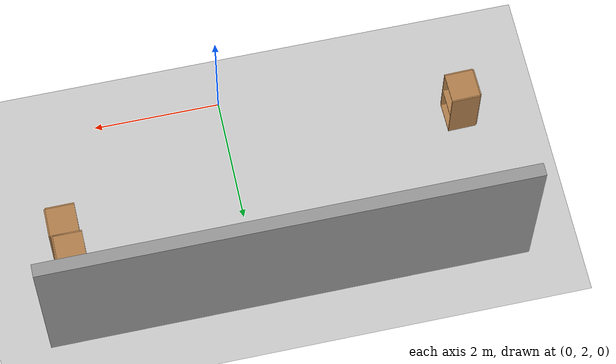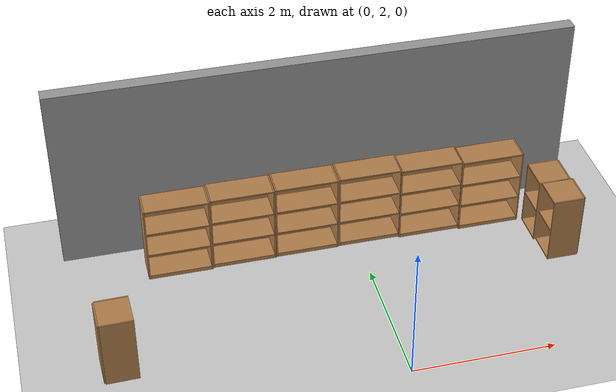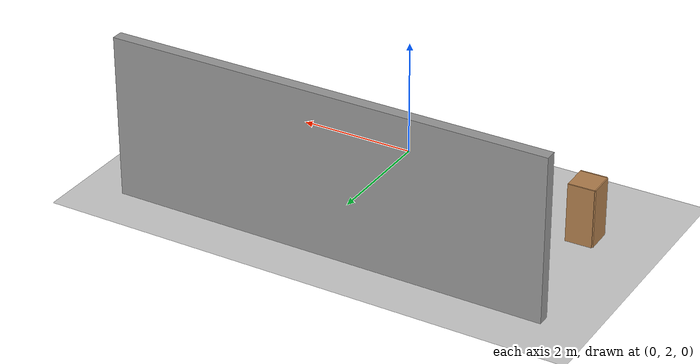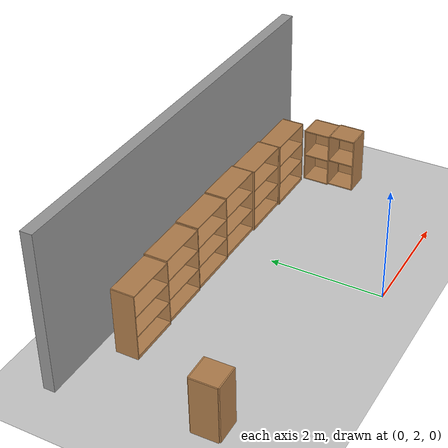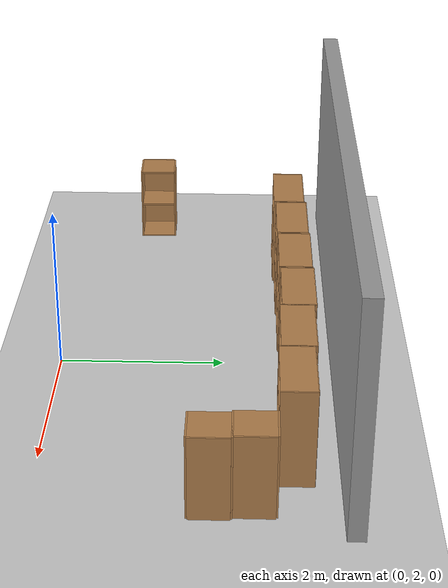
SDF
<sdf version="1.4">
 <world name="default">
  <model name="ground_plane">
   <static>1</static>
   <link name="link">
    <collision name="collision">
     <geometry><plane><normal>0 0 1</normal><size>100 100</size></plane></geometry>
     <surface><friction><ode><mu>100</mu><mu2>50</mu2></ode></friction></surface>
    </collision>
    <visual name="visual">
     <cast_shadows>0</cast_shadows>
     <geometry><plane><normal>0 0 1</normal><size>100 100</size></plane></geometry>
     <material>
      <script><uri>file://media/materials/scripts/gazebo.material</uri><name>Gazebo/Grey</name></script>
     </material>
    </visual>
    <velocity_decay><linear>0</linear><angular>0</angular></velocity_decay>
   </link>
  </model>
  <model name="bookshelf_1">
   <static>1</static>
   <link name="link">
    <inertial><mass>1</mass></inertial>
    <collision name="back">
     <pose>0 0.005 0.6 0 -0 0</pose>
     <geometry><box><size>0.9 0.01 1.2</size></box></geometry>
    </collision>
    <visual name="visual1">
     <pose>0 0.005 0.6 0 -0 0</pose>
     <geometry><box><size>0.9 0.01 1.2</size></box></geometry>
     <material>
      <script><uri>file://media/materials/scripts/gazebo.material</uri><name>Gazebo/Wood</name></script>
     </material>
    </visual>
    <collision name="left_side">
     <pose>0.45 -0.195 0.6 0 -0 0</pose>
     <geometry><box><size>0.02 0.4 1.2</size></box></geometry>
    </collision>
    <visual name="visual2">
     <pose>0.45 -0.195 0.6 0 -0 0</pose>
     <geometry><box><size>0.02 0.4 1.2</size></box></geometry>
     <material>
      <script><uri>file://media/materials/scripts/gazebo.material</uri><name>Gazebo/Wood</name></script>
     </material>
    </visual>
    <collision name="right_side">
     <pose>-0.45 -0.195 0.6 0 -0 0</pose>
     <geometry><box><size>0.02 0.4 1.2</size></box></geometry>
    </collision>
    <visual name="visual3">
     <pose>-0.45 -0.195 0.6 0 -0 0</pose>
     <geometry><box><size>0.02 0.4 1.2</size></box></geometry>
     <material>
      <script><uri>file://media/materials/scripts/gazebo.material</uri><name>Gazebo/Wood</name></script>
     </material>
    </visual>
    <collision name="bottom">
     <pose>0 -0.195 0.03 0 -0 0</pose>
     <geometry><box><size>0.88 0.4 0.06</size></box></geometry>
    </collision>
    <visual name="visual4">
     <pose>0 -0.195 0.03 0 -0 0</pose>
     <geometry><box><size>0.88 0.4 0.06</size></box></geometry>
     <material>
      <script><uri>file://media/materials/scripts/gazebo.material</uri><name>Gazebo/Wood</name></script>
     </material>
    </visual>
    <collision name="top">
     <pose>0 -0.195 1.19 0 -0 0</pose>
     <geometry><box><size>0.88 0.4 0.02</size></box></geometry>
    </collision>
    <visual name="visual5">
     <pose>0 -0.195 1.19 0 -0 0</pose>
     <geometry><box><size>0.88 0.4 0.02</size></box></geometry>
     <material>
      <script><uri>file://media/materials/scripts/gazebo.material</uri><name>Gazebo/Wood</name></script>
     </material>
    </visual>
    <collision name="low_shelf">
     <pose>0 -0.195 0.43 0 -0 0</pose>
     <geometry><box><size>0.88 0.4 0.02</size></box></geometry>
    </collision>
    <visual name="visual6">
     <pose>0 -0.195 0.43 0 -0 0</pose>
     <geometry><box><size>0.88 0.4 0.02</size></box></geometry>
     <material>
      <script><uri>file://media/materials/scripts/gazebo.material</uri><name>Gazebo/Wood</name></script>
     </material>
    </visual>
    <collision name="high_shelf">
     <pose>0 -0.195 0.8 0 -0 0</pose>
     <geometry><box><size>0.88 0.4 0.02</size></box></geometry>
    </collision>
    <visual name="visual7">
     <pose>0 -0.195 0.8 0 -0 0</pose>
     <geometry><box><size>0.88 0.4 0.02</size></box></geometry>
     <material>
      <script><uri>file://media/materials/scripts/gazebo.material</uri><name>Gazebo/Wood</name></script>
     </material>
    </visual>
    <velocity_decay><linear>0</linear><angular>0</angular></velocity_decay>
   </link>
   <pose>-2.60211 5.02258 0 0 -0 0</pose>
  </model>
  <model name="bookshelf_2">
   <static>1</static>
   <link name="link">
    <inertial><mass>1</mass></inertial>
    <collision name="back">
     <pose>0 0.005 0.6 0 -0 0</pose>
     <geometry><box><size>0.9 0.01 1.2</size></box></geometry>
    </collision>
    <visual name="visual1">
     <pose>0 0.005 0.6 0 -0 0</pose>
     <geometry><box><size>0.9 0.01 1.2</size></box></geometry>
     <material>
      <script><uri>file://media/materials/scripts/gazebo.material</uri><name>Gazebo/Wood</name></script>
     </material>
    </visual>
    <collision name="left_side">
     <pose>0.45 -0.195 0.6 0 -0 0</pose>
     <geometry><box><size>0.02 0.4 1.2</size></box></geometry>
    </collision>
    <visual name="visual2">
     <pose>0.45 -0.195 0.6 0 -0 0</pose>
     <geometry><box><size>0.02 0.4 1.2</size></box></geometry>
     <material>
      <script><uri>file://media/materials/scripts/gazebo.material</uri><name>Gazebo/Wood</name></script>
     </material>
    </visual>
    <collision name="right_side">
     <pose>-0.45 -0.195 0.6 0 -0 0</pose>
     <geometry><box><size>0.02 0.4 1.2</size></box></geometry>
    </collision>
    <visual name="visual3">
     <pose>-0.45 -0.195 0.6 0 -0 0</pose>
     <geometry><box><size>0.02 0.4 1.2</size></box></geometry>
     <material>
      <script><uri>file://media/materials/scripts/gazebo.material</uri><name>Gazebo/Wood</name></script>
     </material>
    </visual>
    <collision name="bottom">
     <pose>0 -0.195 0.03 0 -0 0</pose>
     <geometry><box><size>0.88 0.4 0.06</size></box></geometry>
    </collision>
    <visual name="visual4">
     <pose>0 -0.195 0.03 0 -0 0</pose>
     <geometry><box><size>0.88 0.4 0.06</size></box></geometry>
     <material>
      <script><uri>file://media/materials/scripts/gazebo.material</uri><name>Gazebo/Wood</name></script>
     </material>
    </visual>
    <collision name="top">
     <pose>0 -0.195 1.19 0 -0 0</pose>
     <geometry><box><size>0.88 0.4 0.02</size></box></geometry>
    </collision>
    <visual name="visual5">
     <pose>0 -0.195 1.19 0 -0 0</pose>
     <geometry><box><size>0.88 0.4 0.02</size></box></geometry>
     <material>
      <script><uri>file://media/materials/scripts/gazebo.material</uri><name>Gazebo/Wood</name></script>
     </material>
    </visual>
    <collision name="low_shelf">
     <pose>0 -0.195 0.43 0 -0 0</pose>
     <geometry><box><size>0.88 0.4 0.02</size></box></geometry>
    </collision>
    <visual name="visual6">
     <pose>0 -0.195 0.43 0 -0 0</pose>
     <geometry><box><size>0.88 0.4 0.02</size></box></geometry>
     <material>
      <script><uri>file://media/materials/scripts/gazebo.material</uri><name>Gazebo/Wood</name></script>
     </material>
    </visual>
    <collision name="high_shelf">
     <pose>0 -0.195 0.8 0 -0 0</pose>
     <geometry><box><size>0.88 0.4 0.02</size></box></geometry>
    </collision>
    <visual name="visual7">
     <pose>0 -0.195 0.8 0 -0 0</pose>
     <geometry><box><size>0.88 0.4 0.02</size></box></geometry>
     <material>
      <script><uri>file://media/materials/scripts/gazebo.material</uri><name>Gazebo/Wood</name></script>
     </material>
    </visual>
    <velocity_decay><linear>0</linear><angular>0</angular></velocity_decay>
   </link>
   <pose>-1.67887 5.04795 0 0 -0 0</pose>
  </model>
  <model name="bookshelf_3">
   <static>1</static>
   <link name="link">
    <inertial><mass>1</mass></inertial>
    <collision name="back">
     <pose>0 0.005 0.6 0 -0 0</pose>
     <geometry><box><size>0.9 0.01 1.2</size></box></geometry>
    </collision>
    <visual name="visual1">
     <pose>0 0.005 0.6 0 -0 0</pose>
     <geometry><box><size>0.9 0.01 1.2</size></box></geometry>
     <material>
      <script><uri>file://media/materials/scripts/gazebo.material</uri><name>Gazebo/Wood</name></script>
     </material>
    </visual>
    <collision name="left_side">
     <pose>0.45 -0.195 0.6 0 -0 0</pose>
     <geometry><box><size>0.02 0.4 1.2</size></box></geometry>
    </collision>
    <visual name="visual2">
     <pose>0.45 -0.195 0.6 0 -0 0</pose>
     <geometry><box><size>0.02 0.4 1.2</size></box></geometry>
     <material>
      <script><uri>file://media/materials/scripts/gazebo.material</uri><name>Gazebo/Wood</name></script>
     </material>
    </visual>
    <collision name="right_side">
     <pose>-0.45 -0.195 0.6 0 -0 0</pose>
     <geometry><box><size>0.02 0.4 1.2</size></box></geometry>
    </collision>
    <visual name="visual3">
     <pose>-0.45 -0.195 0.6 0 -0 0</pose>
     <geometry><box><size>0.02 0.4 1.2</size></box></geometry>
     <material>
      <script><uri>file://media/materials/scripts/gazebo.material</uri><name>Gazebo/Wood</name></script>
     </material>
    </visual>
    <collision name="bottom">
     <pose>0 -0.195 0.03 0 -0 0</pose>
     <geometry><box><size>0.88 0.4 0.06</size></box></geometry>
    </collision>
    <visual name="visual4">
     <pose>0 -0.195 0.03 0 -0 0</pose>
     <geometry><box><size>0.88 0.4 0.06</size></box></geometry>
     <material>
      <script><uri>file://media/materials/scripts/gazebo.material</uri><name>Gazebo/Wood</name></script>
     </material>
    </visual>
    <collision name="top">
     <pose>0 -0.195 1.19 0 -0 0</pose>
     <geometry><box><size>0.88 0.4 0.02</size></box></geometry>
    </collision>
    <visual name="visual5">
     <pose>0 -0.195 1.19 0 -0 0</pose>
     <geometry><box><size>0.88 0.4 0.02</size></box></geometry>
     <material>
      <script><uri>file://media/materials/scripts/gazebo.material</uri><name>Gazebo/Wood</name></script>
     </material>
    </visual>
    <collision name="low_shelf">
     <pose>0 -0.195 0.43 0 -0 0</pose>
     <geometry><box><size>0.88 0.4 0.02</size></box></geometry>
    </collision>
    <visual name="visual6">
     <pose>0 -0.195 0.43 0 -0 0</pose>
     <geometry><box><size>0.88 0.4 0.02</size></box></geometry>
     <material>
      <script><uri>file://media/materials/scripts/gazebo.material</uri><name>Gazebo/Wood</name></script>
     </material>
    </visual>
    <collision name="high_shelf">
     <pose>0 -0.195 0.8 0 -0 0</pose>
     <geometry><box><size>0.88 0.4 0.02</size></box></geometry>
    </collision>
    <visual name="visual7">
     <pose>0 -0.195 0.8 0 -0 0</pose>
     <geometry><box><size>0.88 0.4 0.02</size></box></geometry>
     <material>
      <script><uri>file://media/materials/scripts/gazebo.material</uri><name>Gazebo/Wood</name></script>
     </material>
    </visual>
    <velocity_decay><linear>0</linear><angular>0</angular></velocity_decay>
   </link>
   <pose>-0.750845 5.06248 0 0 -0 0</pose>
  </model>
  <model name="bookshelf_4">
   <static>1</static>
   <link name="link">
    <inertial><mass>1</mass></inertial>
    <collision name="back">
     <pose>0 0.005 0.6 0 -0 0</pose>
     <geometry><box><size>0.9 0.01 1.2</size></box></geometry>
    </collision>
    <visual name="visual1">
     <pose>0 0.005 0.6 0 -0 0</pose>
     <geometry><box><size>0.9 0.01 1.2</size></box></geometry>
     <material>
      <script><uri>file://media/materials/scripts/gazebo.material</uri><name>Gazebo/Wood</name></script>
     </material>
    </visual>
    <collision name="left_side">
     <pose>0.45 -0.195 0.6 0 -0 0</pose>
     <geometry><box><size>0.02 0.4 1.2</size></box></geometry>
    </collision>
    <visual name="visual2">
     <pose>0.45 -0.195 0.6 0 -0 0</pose>
     <geometry><box><size>0.02 0.4 1.2</size></box></geometry>
     <material>
      <script><uri>file://media/materials/scripts/gazebo.material</uri><name>Gazebo/Wood</name></script>
     </material>
    </visual>
    <collision name="right_side">
     <pose>-0.45 -0.195 0.6 0 -0 0</pose>
     <geometry><box><size>0.02 0.4 1.2</size></box></geometry>
    </collision>
    <visual name="visual3">
     <pose>-0.45 -0.195 0.6 0 -0 0</pose>
     <geometry><box><size>0.02 0.4 1.2</size></box></geometry>
     <material>
      <script><uri>file://media/materials/scripts/gazebo.material</uri><name>Gazebo/Wood</name></script>
     </material>
    </visual>
    <collision name="bottom">
     <pose>0 -0.195 0.03 0 -0 0</pose>
     <geometry><box><size>0.88 0.4 0.06</size></box></geometry>
    </collision>
    <visual name="visual4">
     <pose>0 -0.195 0.03 0 -0 0</pose>
     <geometry><box><size>0.88 0.4 0.06</size></box></geometry>
     <material>
      <script><uri>file://media/materials/scripts/gazebo.material</uri><name>Gazebo/Wood</name></script>
     </material>
    </visual>
    <collision name="top">
     <pose>0 -0.195 1.19 0 -0 0</pose>
     <geometry><box><size>0.88 0.4 0.02</size></box></geometry>
    </collision>
    <visual name="visual5">
     <pose>0 -0.195 1.19 0 -0 0</pose>
     <geometry><box><size>0.88 0.4 0.02</size></box></geometry>
     <material>
      <script><uri>file://media/materials/scripts/gazebo.material</uri><name>Gazebo/Wood</name></script>
     </material>
    </visual>
    <collision name="low_shelf">
     <pose>0 -0.195 0.43 0 -0 0</pose>
     <geometry><box><size>0.88 0.4 0.02</size></box></geometry>
    </collision>
    <visual name="visual6">
     <pose>0 -0.195 0.43 0 -0 0</pose>
     <geometry><box><size>0.88 0.4 0.02</size></box></geometry>
     <material>
      <script><uri>file://media/materials/scripts/gazebo.material</uri><name>Gazebo/Wood</name></script>
     </material>
    </visual>
    <collision name="high_shelf">
     <pose>0 -0.195 0.8 0 -0 0</pose>
     <geometry><box><size>0.88 0.4 0.02</size></box></geometry>
    </collision>
    <visual name="visual7">
     <pose>0 -0.195 0.8 0 -0 0</pose>
     <geometry><box><size>0.88 0.4 0.02</size></box></geometry>
     <material>
      <script><uri>file://media/materials/scripts/gazebo.material</uri><name>Gazebo/Wood</name></script>
     </material>
    </visual>
    <velocity_decay><linear>0</linear><angular>0</angular></velocity_decay>
   </link>
   <pose>0.174137 5.07778 0 0 -0 0</pose>
  </model>
  <model name="bookshelf_5">
   <static>1</static>
   <link name="link">
    <inertial><mass>1</mass></inertial>
    <collision name="back">
     <pose>0 0.005 0.6 0 -0 0</pose>
     <geometry><box><size>0.9 0.01 1.2</size></box></geometry>
    </collision>
    <visual name="visual1">
     <pose>0 0.005 0.6 0 -0 0</pose>
     <geometry><box><size>0.9 0.01 1.2</size></box></geometry>
     <material>
      <script><uri>file://media/materials/scripts/gazebo.material</uri><name>Gazebo/Wood</name></script>
     </material>
    </visual>
    <collision name="left_side">
     <pose>0.45 -0.195 0.6 0 -0 0</pose>
     <geometry><box><size>0.02 0.4 1.2</size></box></geometry>
    </collision>
    <visual name="visual2">
     <pose>0.45 -0.195 0.6 0 -0 0</pose>
     <geometry><box><size>0.02 0.4 1.2</size></box></geometry>
     <material>
      <script><uri>file://media/materials/scripts/gazebo.material</uri><name>Gazebo/Wood</name></script>
     </material>
    </visual>
    <collision name="right_side">
     <pose>-0.45 -0.195 0.6 0 -0 0</pose>
     <geometry><box><size>0.02 0.4 1.2</size></box></geometry>
    </collision>
    <visual name="visual3">
     <pose>-0.45 -0.195 0.6 0 -0 0</pose>
     <geometry><box><size>0.02 0.4 1.2</size></box></geometry>
     <material>
      <script><uri>file://media/materials/scripts/gazebo.material</uri><name>Gazebo/Wood</name></script>
     </material>
    </visual>
    <collision name="bottom">
     <pose>0 -0.195 0.03 0 -0 0</pose>
     <geometry><box><size>0.88 0.4 0.06</size></box></geometry>
    </collision>
    <visual name="visual4">
     <pose>0 -0.195 0.03 0 -0 0</pose>
     <geometry><box><size>0.88 0.4 0.06</size></box></geometry>
     <material>
      <script><uri>file://media/materials/scripts/gazebo.material</uri><name>Gazebo/Wood</name></script>
     </material>
    </visual>
    <collision name="top">
     <pose>0 -0.195 1.19 0 -0 0</pose>
     <geometry><box><size>0.88 0.4 0.02</size></box></geometry>
    </collision>
    <visual name="visual5">
     <pose>0 -0.195 1.19 0 -0 0</pose>
     <geometry><box><size>0.88 0.4 0.02</size></box></geometry>
     <material>
      <script><uri>file://media/materials/scripts/gazebo.material</uri><name>Gazebo/Wood</name></script>
     </material>
    </visual>
    <collision name="low_shelf">
     <pose>0 -0.195 0.43 0 -0 0</pose>
     <geometry><box><size>0.88 0.4 0.02</size></box></geometry>
    </collision>
    <visual name="visual6">
     <pose>0 -0.195 0.43 0 -0 0</pose>
     <geometry><box><size>0.88 0.4 0.02</size></box></geometry>
     <material>
      <script><uri>file://media/materials/scripts/gazebo.material</uri><name>Gazebo/Wood</name></script>
     </material>
    </visual>
    <collision name="high_shelf">
     <pose>0 -0.195 0.8 0 -0 0</pose>
     <geometry><box><size>0.88 0.4 0.02</size></box></geometry>
    </collision>
    <visual name="visual7">
     <pose>0 -0.195 0.8 0 -0 0</pose>
     <geometry><box><size>0.88 0.4 0.02</size></box></geometry>
     <material>
      <script><uri>file://media/materials/scripts/gazebo.material</uri><name>Gazebo/Wood</name></script>
     </material>
    </visual>
    <velocity_decay><linear>0</linear><angular>0</angular></velocity_decay>
   </link>
   <pose>1.07614 5.05183 0 0 -0 0</pose>
  </model>
  <model name="bookshelf_6">
   <static>1</static>
   <link name="link">
    <inertial><mass>1</mass></inertial>
    <collision name="back">
     <pose>0 0.005 0.6 0 -0 0</pose>
     <geometry><box><size>0.9 0.01 1.2</size></box></geometry>
    </collision>
    <visual name="visual1">
     <pose>0 0.005 0.6 0 -0 0</pose>
     <geometry><box><size>0.9 0.01 1.2</size></box></geometry>
     <material>
      <script><uri>file://media/materials/scripts/gazebo.material</uri><name>Gazebo/Wood</name></script>
     </material>
    </visual>
    <collision name="left_side">
     <pose>0.45 -0.195 0.6 0 -0 0</pose>
     <geometry><box><size>0.02 0.4 1.2</size></box></geometry>
    </collision>
    <visual name="visual2">
     <pose>0.45 -0.195 0.6 0 -0 0</pose>
     <geometry><box><size>0.02 0.4 1.2</size></box></geometry>
     <material>
      <script><uri>file://media/materials/scripts/gazebo.material</uri><name>Gazebo/Wood</name></script>
     </material>
    </visual>
    <collision name="right_side">
     <pose>-0.45 -0.195 0.6 0 -0 0</pose>
     <geometry><box><size>0.02 0.4 1.2</size></box></geometry>
    </collision>
    <visual name="visual3">
     <pose>-0.45 -0.195 0.6 0 -0 0</pose>
     <geometry><box><size>0.02 0.4 1.2</size></box></geometry>
     <material>
      <script><uri>file://media/materials/scripts/gazebo.material</uri><name>Gazebo/Wood</name></script>
     </material>
    </visual>
    <collision name="bottom">
     <pose>0 -0.195 0.03 0 -0 0</pose>
     <geometry><box><size>0.88 0.4 0.06</size></box></geometry>
    </collision>
    <visual name="visual4">
     <pose>0 -0.195 0.03 0 -0 0</pose>
     <geometry><box><size>0.88 0.4 0.06</size></box></geometry>
     <material>
      <script><uri>file://media/materials/scripts/gazebo.material</uri><name>Gazebo/Wood</name></script>
     </material>
    </visual>
    <collision name="top">
     <pose>0 -0.195 1.19 0 -0 0</pose>
     <geometry><box><size>0.88 0.4 0.02</size></box></geometry>
    </collision>
    <visual name="visual5">
     <pose>0 -0.195 1.19 0 -0 0</pose>
     <geometry><box><size>0.88 0.4 0.02</size></box></geometry>
     <material>
      <script><uri>file://media/materials/scripts/gazebo.material</uri><name>Gazebo/Wood</name></script>
     </material>
    </visual>
    <collision name="low_shelf">
     <pose>0 -0.195 0.43 0 -0 0</pose>
     <geometry><box><size>0.88 0.4 0.02</size></box></geometry>
    </collision>
    <visual name="visual6">
     <pose>0 -0.195 0.43 0 -0 0</pose>
     <geometry><box><size>0.88 0.4 0.02</size></box></geometry>
     <material>
      <script><uri>file://media/materials/scripts/gazebo.material</uri><name>Gazebo/Wood</name></script>
     </material>
    </visual>
    <collision name="high_shelf">
     <pose>0 -0.195 0.8 0 -0 0</pose>
     <geometry><box><size>0.88 0.4 0.02</size></box></geometry>
    </collision>
    <visual name="visual7">
     <pose>0 -0.195 0.8 0 -0 0</pose>
     <geometry><box><size>0.88 0.4 0.02</size></box></geometry>
     <material>
      <script><uri>file://media/materials/scripts/gazebo.material</uri><name>Gazebo/Wood</name></script>
     </material>
    </visual>
    <velocity_decay><linear>0</linear><angular>0</angular></velocity_decay>
   </link>
   <pose>1.97925 5.02595 0 0 -0 0</pose>
  </model>
  <model name="cabinet">
   <static>1</static>
   <link name="cabinet_bottom_plate">
    <inertial>
     <pose>0 0 -1 0 -0 0</pose>
     <inertia><ixx>2.05</ixx><ixy>0</ixy><ixz>0</ixz><iyy>2.05</iyy><iyz>0</iyz><izz>2.05</izz></inertia>
     <mass>25</mass>
    </inertial>
    <collision name="cabinet_bottom_plate_geom">
     <pose>0 0 0.01 0 -0 0</pose>
     <geometry><box><size>0.45 0.45 0.02</size></box></geometry>
    </collision>
    <visual name="cabinet_bottom_plate_geom_visual">
     <pose>0 0 0.01 0 -0 0</pose>
     <geometry><box><size>0.45 0.45 0.02</size></box></geometry>
     <material>
      <script><uri>file://media/materials/scripts/gazebo.material</uri><name>Gazebo/Wood</name></script>
     </material>
    </visual>
    <collision name="cabinet_bottom_plate_geom_cabinet_back_plate">
     <pose>0.235 0 0.51 0 -0 0</pose>
     <geometry><box><size>0.02 0.45 1.02</size></box></geometry>
    </collision>
    <visual name="cabinet_bottom_plate_geom_cabinet_back_plate_visual">
     <pose>0.235 0 0.51 0 -0 0</pose>
     <geometry><box><size>0.02 0.45 1.02</size></box></geometry>
     <material>
      <script><uri>file://media/materials/scripts/gazebo.material</uri><name>Gazebo/Wood</name></script>
     </material>
    </visual>
    <collision name="cabinet_bottom_plate_geom_cabinet_left_plate">
     <pose>0 0.235 0.51 0 -0 0</pose>
     <geometry><box><size>0.45 0.02 1.02</size></box></geometry>
    </collision>
    <visual name="cabinet_bottom_plate_geom_cabinet_left_plate_visual">
     <pose>0 0.235 0.51 0 -0 0</pose>
     <geometry><box><size>0.45 0.02 1.02</size></box></geometry>
     <material>
      <script><uri>file://media/materials/scripts/gazebo.material</uri><name>Gazebo/Wood</name></script>
     </material>
    </visual>
    <collision name="cabinet_bottom_plate_geom_cabinet_middle_plate">
     <pose>0 0 0.51 0 -0 0</pose>
     <geometry><box><size>0.45 0.45 0.02</size></box></geometry>
    </collision>
    <visual name="cabinet_bottom_plate_geom_cabinet_middle_plate_visual">
     <pose>0 0 0.51 0 -0 0</pose>
     <geometry><box><size>0.45 0.45 0.02</size></box></geometry>
     <material>
      <script><uri>file://media/materials/scripts/gazebo.material</uri><name>Gazebo/Wood</name></script>
     </material>
    </visual>
    <collision name="cabinet_bottom_plate_geom_cabinet_right_plate">
     <pose>0 -0.235 0.51 0 -0 0</pose>
     <geometry><box><size>0.45 0.02 1.02</size></box></geometry>
    </collision>
    <visual name="cabinet_bottom_plate_geom_cabinet_right_plate_visual">
     <pose>0 -0.235 0.51 0 -0 0</pose>
     <geometry><box><size>0.45 0.02 1.02</size></box></geometry>
     <material>
      <script><uri>file://media/materials/scripts/gazebo.material</uri><name>Gazebo/Wood</name></script>
     </material>
    </visual>
    <collision name="cabinet_bottom_plate_geom_cabinet_top_plate">
     <pose>0 0 1.01 0 -0 0</pose>
     <geometry><box><size>0.45 0.45 0.02</size></box></geometry>
    </collision>
    <visual name="cabinet_bottom_plate_geom_cabinet_top_plate_visual">
     <pose>0 0 1.01 0 -0 0</pose>
     <geometry><box><size>0.45 0.45 0.02</size></box></geometry>
     <material>
      <script><uri>file://media/materials/scripts/gazebo.material</uri><name>Gazebo/Wood</name></script>
     </material>
    </visual>
    <velocity_decay><linear>0</linear><angular>0</angular></velocity_decay>
   </link>
   <pose>-3.69276 2.98309 0 0 0 -3.12119</pose>
  </model>
  <model name="cabinet_1">
   <static>1</static>
   <link name="cabinet_bottom_plate">
    <inertial>
     <pose>0 0 -1 0 -0 0</pose>
     <inertia><ixx>2.05</ixx><ixy>0</ixy><ixz>0</ixz><iyy>2.05</iyy><iyz>0</iyz><izz>2.05</izz></inertia>
     <mass>25</mass>
    </inertial>
    <collision name="cabinet_bottom_plate_geom">
     <pose>0 0 0.01 0 -0 0</pose>
     <geometry><box><size>0.45 0.45 0.02</size></box></geometry>
    </collision>
    <visual name="cabinet_bottom_plate_geom_visual">
     <pose>0 0 0.01 0 -0 0</pose>
     <geometry><box><size>0.45 0.45 0.02</size></box></geometry>
     <material>
      <script><uri>file://media/materials/scripts/gazebo.material</uri><name>Gazebo/Wood</name></script>
     </material>
    </visual>
    <collision name="cabinet_bottom_plate_geom_cabinet_back_plate">
     <pose>0.235 0 0.51 0 -0 0</pose>
     <geometry><box><size>0.02 0.45 1.02</size></box></geometry>
    </collision>
    <visual name="cabinet_bottom_plate_geom_cabinet_back_plate_visual">
     <pose>0.235 0 0.51 0 -0 0</pose>
     <geometry><box><size>0.02 0.45 1.02</size></box></geometry>
     <material>
      <script><uri>file://media/materials/scripts/gazebo.material</uri><name>Gazebo/Wood</name></script>
     </material>
    </visual>
    <collision name="cabinet_bottom_plate_geom_cabinet_left_plate">
     <pose>0 0.235 0.51 0 -0 0</pose>
     <geometry><box><size>0.45 0.02 1.02</size></box></geometry>
    </collision>
    <visual name="cabinet_bottom_plate_geom_cabinet_left_plate_visual">
     <pose>0 0.235 0.51 0 -0 0</pose>
     <geometry><box><size>0.45 0.02 1.02</size></box></geometry>
     <material>
      <script><uri>file://media/materials/scripts/gazebo.material</uri><name>Gazebo/Wood</name></script>
     </material>
    </visual>
    <collision name="cabinet_bottom_plate_geom_cabinet_middle_plate">
     <pose>0 0 0.51 0 -0 0</pose>
     <geometry><box><size>0.45 0.45 0.02</size></box></geometry>
    </collision>
    <visual name="cabinet_bottom_plate_geom_cabinet_middle_plate_visual">
     <pose>0 0 0.51 0 -0 0</pose>
     <geometry><box><size>0.45 0.45 0.02</size></box></geometry>
     <material>
      <script><uri>file://media/materials/scripts/gazebo.material</uri><name>Gazebo/Wood</name></script>
     </material>
    </visual>
    <collision name="cabinet_bottom_plate_geom_cabinet_right_plate">
     <pose>0 -0.235 0.51 0 -0 0</pose>
     <geometry><box><size>0.45 0.02 1.02</size></box></geometry>
    </collision>
    <visual name="cabinet_bottom_plate_geom_cabinet_right_plate_visual">
     <pose>0 -0.235 0.51 0 -0 0</pose>
     <geometry><box><size>0.45 0.02 1.02</size></box></geometry>
     <material>
      <script><uri>file://media/materials/scripts/gazebo.material</uri><name>Gazebo/Wood</name></script>
     </material>
    </visual>
    <collision name="cabinet_bottom_plate_geom_cabinet_top_plate">
     <pose>0 0 1.01 0 -0 0</pose>
     <geometry><box><size>0.45 0.45 0.02</size></box></geometry>
    </collision>
    <visual name="cabinet_bottom_plate_geom_cabinet_top_plate_visual">
     <pose>0 0 1.01 0 -0 0</pose>
     <geometry><box><size>0.45 0.45 0.02</size></box></geometry>
     <material>
      <script><uri>file://media/materials/scripts/gazebo.material</uri><name>Gazebo/Wood</name></script>
     </material>
    </visual>
    <velocity_decay><linear>0</linear><angular>0</angular></velocity_decay>
   </link>
   <pose>2.73692 4.38456 0 0 -0 0</pose>
  </model>
  <model name="cabinet_2">
   <static>1</static>
   <link name="cabinet_bottom_plate">
    <inertial>
     <pose>0 0 -1 0 -0 0</pose>
     <inertia><ixx>2.05</ixx><ixy>0</ixy><ixz>0</ixz><iyy>2.05</iyy><iyz>0</iyz><izz>2.05</izz></inertia>
     <mass>25</mass>
    </inertial>
    <collision name="cabinet_bottom_plate_geom">
     <pose>0 0 0.01 0 -0 0</pose>
     <geometry><box><size>0.45 0.45 0.02</size></box></geometry>
    </collision>
    <visual name="cabinet_bottom_plate_geom_visual">
     <pose>0 0 0.01 0 -0 0</pose>
     <geometry><box><size>0.45 0.45 0.02</size></box></geometry>
     <material>
      <script><uri>file://media/materials/scripts/gazebo.material</uri><name>Gazebo/Wood</name></script>
     </material>
    </visual>
    <collision name="cabinet_bottom_plate_geom_cabinet_back_plate">
     <pose>0.235 0 0.51 0 -0 0</pose>
     <geometry><box><size>0.02 0.45 1.02</size></box></geometry>
    </collision>
    <visual name="cabinet_bottom_plate_geom_cabinet_back_plate_visual">
     <pose>0.235 0 0.51 0 -0 0</pose>
     <geometry><box><size>0.02 0.45 1.02</size></box></geometry>
     <material>
      <script><uri>file://media/materials/scripts/gazebo.material</uri><name>Gazebo/Wood</name></script>
     </material>
    </visual>
    <collision name="cabinet_bottom_plate_geom_cabinet_left_plate">
     <pose>0 0.235 0.51 0 -0 0</pose>
     <geometry><box><size>0.45 0.02 1.02</size></box></geometry>
    </collision>
    <visual name="cabinet_bottom_plate_geom_cabinet_left_plate_visual">
     <pose>0 0.235 0.51 0 -0 0</pose>
     <geometry><box><size>0.45 0.02 1.02</size></box></geometry>
     <material>
      <script><uri>file://media/materials/scripts/gazebo.material</uri><name>Gazebo/Wood</name></script>
     </material>
    </visual>
    <collision name="cabinet_bottom_plate_geom_cabinet_middle_plate">
     <pose>0 0 0.51 0 -0 0</pose>
     <geometry><box><size>0.45 0.45 0.02</size></box></geometry>
    </collision>
    <visual name="cabinet_bottom_plate_geom_cabinet_middle_plate_visual">
     <pose>0 0 0.51 0 -0 0</pose>
     <geometry><box><size>0.45 0.45 0.02</size></box></geometry>
     <material>
      <script><uri>file://media/materials/scripts/gazebo.material</uri><name>Gazebo/Wood</name></script>
     </material>
    </visual>
    <collision name="cabinet_bottom_plate_geom_cabinet_right_plate">
     <pose>0 -0.235 0.51 0 -0 0</pose>
     <geometry><box><size>0.45 0.02 1.02</size></box></geometry>
    </collision>
    <visual name="cabinet_bottom_plate_geom_cabinet_right_plate_visual">
     <pose>0 -0.235 0.51 0 -0 0</pose>
     <geometry><box><size>0.45 0.02 1.02</size></box></geometry>
     <material>
      <script><uri>file://media/materials/scripts/gazebo.material</uri><name>Gazebo/Wood</name></script>
     </material>
    </visual>
    <collision name="cabinet_bottom_plate_geom_cabinet_top_plate">
     <pose>0 0 1.01 0 -0 0</pose>
     <geometry><box><size>0.45 0.45 0.02</size></box></geometry>
    </collision>
    <visual name="cabinet_bottom_plate_geom_cabinet_top_plate_visual">
     <pose>0 0 1.01 0 -0 0</pose>
     <geometry><box><size>0.45 0.45 0.02</size></box></geometry>
     <material>
      <script><uri>file://media/materials/scripts/gazebo.material</uri><name>Gazebo/Wood</name></script>
     </material>
    </visual>
    <velocity_decay><linear>0</linear><angular>0</angular></velocity_decay>
   </link>
   <pose>2.77184 3.91477 0 0 -0 0</pose>
  </model>
  <model name="grey_wall">
   <static>1</static>
   <link name="link">
    <pose>0 0 1.4 0 -0 0</pose>
    <collision name="collision"><geometry><box><size>7.5 0.2 2.8</size></box></geometry></collision>
    <visual name="visual">
     <cast_shadows>0</cast_shadows>
     <geometry><box><size>7.5 0.2 2.8</size></box></geometry>
     <material>
      <script>
       <uri>model://grey_wall/materials/scripts</uri>
       <uri>model://grey_wall/materials/textures</uri>
       <name>vrc/grey_wall</name>
      </script>
     </material>
    </visual>
    <velocity_decay><linear>0</linear><angular>0</angular></velocity_decay>
   </link>
   <pose>-0.442389 5.41352 0 0 -0 0</pose>
  </model>
 </world>
</sdf>
